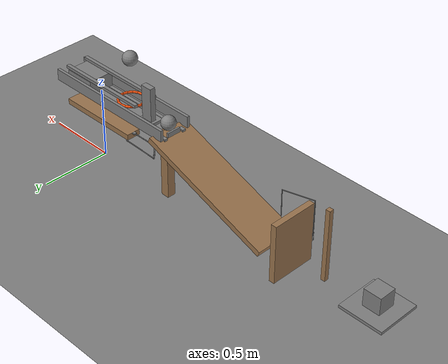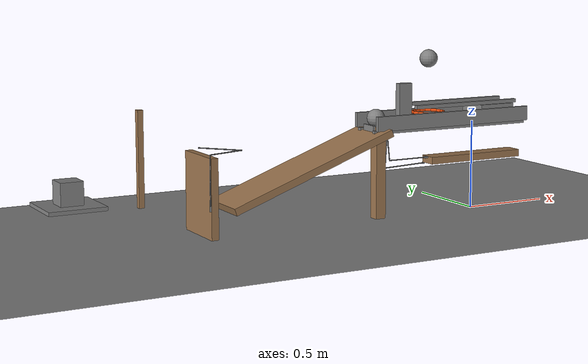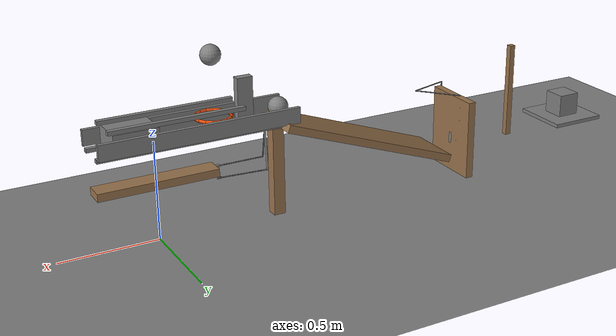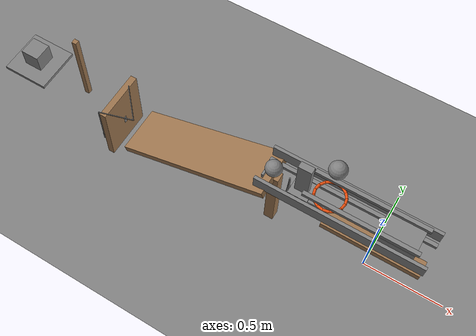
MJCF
<mujoco model="impact_released_gravity_chain">
  <compiler angle="radian"/>
  <option timestep="0.002"/>
  <worldbody>
    <geom name="floor" type="plane" size="6 6 0.1" friction="0.72 0.005 0.002"/>
    <body name="ring1">
      <geom name="ring1_00" type="capsule" size="0.008" fromto="-0.212 0 0.57 -0.218699 0.0336761 0.57" friction="0.72 0.005 0.0001" solref="0.01 1" rgba="0.9 0.3 0.05 1"/>
      <geom name="ring1_01" type="capsule" size="0.008" fromto="-0.218699 0.0336761 0.57 -0.237775 0.0622254 0.57" friction="0.72 0.005 0.0001" solref="0.01 1" rgba="0.9 0.3 0.05 1"/>
      <geom name="ring1_02" type="capsule" size="0.008" fromto="-0.237775 0.0622254 0.57 -0.266324 0.0813014 0.57" friction="0.72 0.005 0.0001" solref="0.01 1" rgba="0.9 0.3 0.05 1"/>
      <geom name="ring1_03" type="capsule" size="0.008" fromto="-0.266324 0.0813014 0.57 -0.3 0.088 0.57" friction="0.72 0.005 0.0001" solref="0.01 1" rgba="0.9 0.3 0.05 1"/>
      <geom name="ring1_04" type="capsule" size="0.008" fromto="-0.3 0.088 0.57 -0.333676 0.0813014 0.57" friction="0.72 0.005 0.0001" solref="0.01 1" rgba="0.9 0.3 0.05 1"/>
      <geom name="ring1_05" type="capsule" size="0.008" fromto="-0.333676 0.0813014 0.57 -0.362225 0.0622254 0.57" friction="0.72 0.005 0.0001" solref="0.01 1" rgba="0.9 0.3 0.05 1"/>
      <geom name="ring1_06" type="capsule" size="0.008" fromto="-0.362225 0.0622254 0.57 -0.381301 0.0336761 0.57" friction="0.72 0.005 0.0001" solref="0.01 1" rgba="0.9 0.3 0.05 1"/>
      <geom name="ring1_07" type="capsule" size="0.008" fromto="-0.381301 0.0336761 0.57 -0.388 1.07769e-17 0.57" friction="0.72 0.005 0.0001" solref="0.01 1" rgba="0.9 0.3 0.05 1"/>
      <geom name="ring1_08" type="capsule" size="0.008" fromto="-0.388 1.07769e-17 0.57 -0.381301 -0.0336761 0.57" friction="0.72 0.005 0.0001" solref="0.01 1" rgba="0.9 0.3 0.05 1"/>
      <geom name="ring1_09" type="capsule" size="0.008" fromto="-0.381301 -0.0336761 0.57 -0.362225 -0.0622254 0.57" friction="0.72 0.005 0.0001" solref="0.01 1" rgba="0.9 0.3 0.05 1"/>
      <geom name="ring1_10" type="capsule" size="0.008" fromto="-0.362225 -0.0622254 0.57 -0.333676 -0.0813014 0.57" friction="0.72 0.005 0.0001" solref="0.01 1" rgba="0.9 0.3 0.05 1"/>
      <geom name="ring1_11" type="capsule" size="0.008" fromto="-0.333676 -0.0813014 0.57 -0.3 -0.088 0.57" friction="0.72 0.005 0.0001" solref="0.01 1" rgba="0.9 0.3 0.05 1"/>
      <geom name="ring1_12" type="capsule" size="0.008" fromto="-0.3 -0.088 0.57 -0.266324 -0.0813014 0.57" friction="0.72 0.005 0.0001" solref="0.01 1" rgba="0.9 0.3 0.05 1"/>
      <geom name="ring1_13" type="capsule" size="0.008" fromto="-0.266324 -0.0813014 0.57 -0.237775 -0.0622254 0.57" friction="0.72 0.005 0.0001" solref="0.01 1" rgba="0.9 0.3 0.05 1"/>
      <geom name="ring1_14" type="capsule" size="0.008" fromto="-0.237775 -0.0622254 0.57 -0.218699 -0.0336761 0.57" friction="0.72 0.005 0.0001" solref="0.01 1" rgba="0.9 0.3 0.05 1"/>
      <geom name="ring1_15" type="capsule" size="0.008" fromto="-0.218699 -0.0336761 0.57 -0.212 -2.15538e-17 0.57" friction="0.72 0.005 0.0001" solref="0.01 1" rgba="0.9 0.3 0.05 1"/>
    </body>
    <body name="ball1" pos="-0.3 0 0.87">
      <freejoint/>
      <geom name="ball1" type="sphere" pos="0 0 0" size="0.05" mass="0.2" condim="6" friction="0.72 0.005 0.002" solref="0.01 1"/>
    </body>
    <body name="lever1" pos="0 0 0.3">
      <joint name="lever_hinge" type="hinge" pos="0 0 0" axis="0 1 0" limited="true" range="-0.785398 0" stiffness="40" springref="-0.785398" damping="0.04" armature="0.05"/>
      <geom name="lever1" type="box" pos="0 0 0" size="0.3 0.05 0.02" mass="0.5" friction="0.72 0.005 0.0001" solref="0.01 1" rgba="0.6 0.45 0.3 1"/>
    </body>
    <body name="lever latch stem" pos="-0.55 0.03 0.48">
      <joint name="lever_latch_hinge" type="hinge" pos="0 0 0" axis="1 0 0" limited="true" range="0 1.5708" stiffness="0.5" springref="0" damping="0.04"/>
      <geom name="lever latch stem" type="capsule" size="0.005" fromto="0 0 0 0 0.02 -0.215" mass="0.03" friction="0.72 0.005 0.0001" solref="0.01 1"/>
      <geom name="lever latch support arm" type="capsule" size="0.003" fromto="0 0.02 -0.215 0.255 0.02 -0.205" mass="0.01" friction="0.72 0.005 0.0001" solref="0.01 1"/>
      <geom name="lever latch support" type="box" pos="0.255 0.02 -0.205" size="0.01 0.001 0.005" mass="0.005" friction="0.72 0.005 0.0001" solref="0.01 1"/>
      <geom name="lever latch trigger stem" type="capsule" size="0.003" fromto="0 0 0 0 -0.03 -0.165" mass="0.01" friction="0.72 0.005 0.0001" solref="0.01 1"/>
      <geom name="lever latch trigger arm" type="capsule" size="0.003" fromto="0 -0.03 -0.165 0.24 -0.03 -0.165" mass="0.005" friction="0.72 0.005 0.0001" solref="0.01 1"/>
      <geom name="lever latch button" type="box" pos="0.24 -0.03 -0.165" size="0.01 0.01 0.005" mass="0.005" friction="0.72 0.005 0.0001" solref="0.01 1"/>
    </body>
    <body name="left slide rail">
      <geom name="left slide rail" type="box" pos="-0.2 0.075 0.49" size="0.5 0.0125 0.01" friction="0.72 0.005 0.0001" solref="0.01 1"/>
    </body>
    <body name="right slide rail">
      <geom name="right slide rail" type="box" pos="-0.2 -0.075 0.49" size="0.5 0.0125 0.01" friction="0.72 0.005 0.0001" solref="0.01 1"/>
    </body>
    <body name="left slide guide">
      <geom name="left slide guide" type="box" pos="-0.2 0.11 0.54" size="0.5 0.01 0.04" friction="0.72 0.005 0.0001" solref="0.01 1"/>
    </body>
    <body name="right slide guide">
      <geom name="right slide guide" type="box" pos="-0.2 -0.11 0.54" size="0.5 0.01 0.04" friction="0.72 0.005 0.0001" solref="0.01 1"/>
    </body>
    <body name="left upper guide">
      <geom name="left upper guide" type="box" pos="-0.095 0.075 0.612" size="0.335 0.0125 0.01" friction="0.72 0.005 0.0001" solref="0.01 1"/>
    </body>
    <body name="right upper guide">
      <geom name="right upper guide" type="box" pos="-0.095 -0.075 0.612" size="0.335 0.0125 0.01" friction="0.72 0.005 0.0001" solref="0.01 1"/>
    </body>
    <body name="cart1" pos="0.11 0 0.55">
      <freejoint/>
      <geom name="cart1" type="box" pos="0 0 0" size="0.11 0.09 0.05" mass="0.5" friction="0.72 0.005 0.0001" solref="0.01 1"/>
    </body>
    <body name="domino pedestal">
      <geom name="domino pedestal" type="box" pos="-0.46 0 0.49" size="0.06 0.06 0.01" friction="0.72 0.005 0.0001" solref="0.01 1"/>
    </body>
    <body name="domino1" pos="-0.46 0 0.62">
      <freejoint/>
      <geom name="domino1" type="box" pos="0 0 0" size="0.04 0.02 0.12" mass="0.25" friction="0.72 0.005 0.0001" solref="0.01 1"/>
    </body>
    <body name="ramp1">
      <geom name="ramp1_deck" type="box" pos="-1.09275 0 0.32101" size="0.5 0.15 0.02" euler="0 2.79253 0" friction="0.72 0.005 0.002" solref="0.01 1" rgba="0.6 0.45 0.3 1"/>
      <geom name="ramp1_leg" type="box" pos="-0.622899 0 0.24601" size="0.03 0.03 0.24601" friction="0.72 0.005 0.002" solref="0.01 1" rgba="0.6 0.45 0.3 1"/>
    </body>
    <body name="ball2 retaining curb">
      <geom name="ball2 retaining curb" type="box" pos="-0.682 0 0.506" size="0.006 0.05 0.017" friction="0.72 0.005 0.0001" solref="0.01 1"/>
    </body>
    <body name="ball2" pos="-0.64 0 0.55779">
      <freejoint/>
      <geom name="ball2" type="sphere" pos="0 0 0" size="0.05" mass="0.2" condim="6" friction="0.72 0.005 0.002" solref="0.01 1"/>
    </body>
    <body name="door1" pos="-1.68259 0.16 0.23">
      <joint name="door_hinge" type="hinge" pos="0 0 0" axis="0 0 1" limited="true" range="-1.22173 0" stiffness="5" springref="-1.22173" damping="0.04"/>
      <geom name="door1" type="box" pos="0 -0.16 0" size="0.02 0.16 0.21" mass="0.45" friction="0.72 0.005 0.0001" solref="0.01 1" rgba="0.6 0.45 0.3 1"/>
    </body>
    <body name="door latch arm" pos="-1.50259 -0.1 0.46">
      <joint name="door_latch_hinge" type="hinge" pos="0 0 0" axis="0 0 1" limited="true" range="0 1.5708" stiffness="0.5" springref="0" damping="0.04"/>
      <geom name="door latch arm" type="capsule" size="0.003" fromto="0 0 0 -0.205 -0.06 0" mass="0.02" friction="0.72 0.005 0.0001" solref="0.01 1"/>
      <geom name="door latch rear column" type="capsule" size="0.003" fromto="-0.205 -0.06 0 -0.205 -0.06 -0.26" mass="0.005" friction="0.72 0.005 0.0001" solref="0.01 1"/>
      <geom name="door latch support" type="box" pos="-0.205 -0.06 -0.26" size="0.005 0.001 0.03" mass="0.005" friction="0.72 0.005 0.0001" solref="0.01 1"/>
      <geom name="door latch trigger beam" type="capsule" size="0.003" fromto="0 0 0 -0.15995 0.18 0" mass="0.005" friction="0.72 0.005 0.0001" solref="0.01 1"/>
      <geom name="door latch trigger column" type="capsule" size="2.5e-05" fromto="-0.15995 0.18 0 -0.15995 0.18 -0.26" mass="1e-05" friction="0.72 0.005 0.0001" solref="0.01 1"/>
      <geom name="door latch trigger link" type="capsule" size="2.5e-05" fromto="-0.15995 0.18 -0.26 -0.15995 0.1 -0.26" mass="1e-05" friction="0.72 0.005 0.0001" solref="0.01 1"/>
      <geom name="door latch release plate" type="box" pos="-0.15995 0.1 -0.26" size="5e-05 0.01 0.03" mass="0.003" friction="0.72 0.005 0.0001" solref="0.01 1"/>
    </body>
    <body name="pendulum1" pos="-1.993 0.062 0.68">
      <joint name="pendulum_hinge" type="hinge" pos="0 0 0" axis="0 1 0" limited="true" range="0 0.663225" damping="0.04"/>
      <geom name="pendulum1" type="box" pos="0 0 -0.25" size="0.015 0.015 0.25" mass="0.35" friction="0.72 0.005 0.0001" solref="0.01 1" rgba="0.6 0.45 0.3 1"/>
    </body>
    <body name="block pedestal">
      <geom name="block pedestal" type="box" pos="-2.37265 0.062 0.2252" size="0.15 0.15 0.01" friction="0.72 0.005 0.0001" solref="0.01 1"/>
    </body>
    <body name="block1" pos="-2.37265 0.062 0.2952">
      <freejoint/>
      <geom name="block1" type="box" pos="0 0 0" size="0.06 0.06 0.06" mass="0.35" friction="0.72 0.005 0.0001" solref="0.01 1"/>
    </body>
  </worldbody>
  <keyframe>
    <key name="start" qpos="-0.3 0 0.87 1 0 0 0 0 0 0.11 0 0.55 1 0 0 0 -0.46 0 0.62 1 0 0 0 -0.64 0 0.55779 1 0 0 0 0 0 0 -2.37265 0.062 0.2952 1 0 0 0" qvel="0 0 0 0 0 0 0 0 0 0 0 0 0 0 0 0 0 0 0 0 0 0 0 0 0 0 0 0 0 0 0 0 0 0 0"/>
  </keyframe>
</mujoco>
